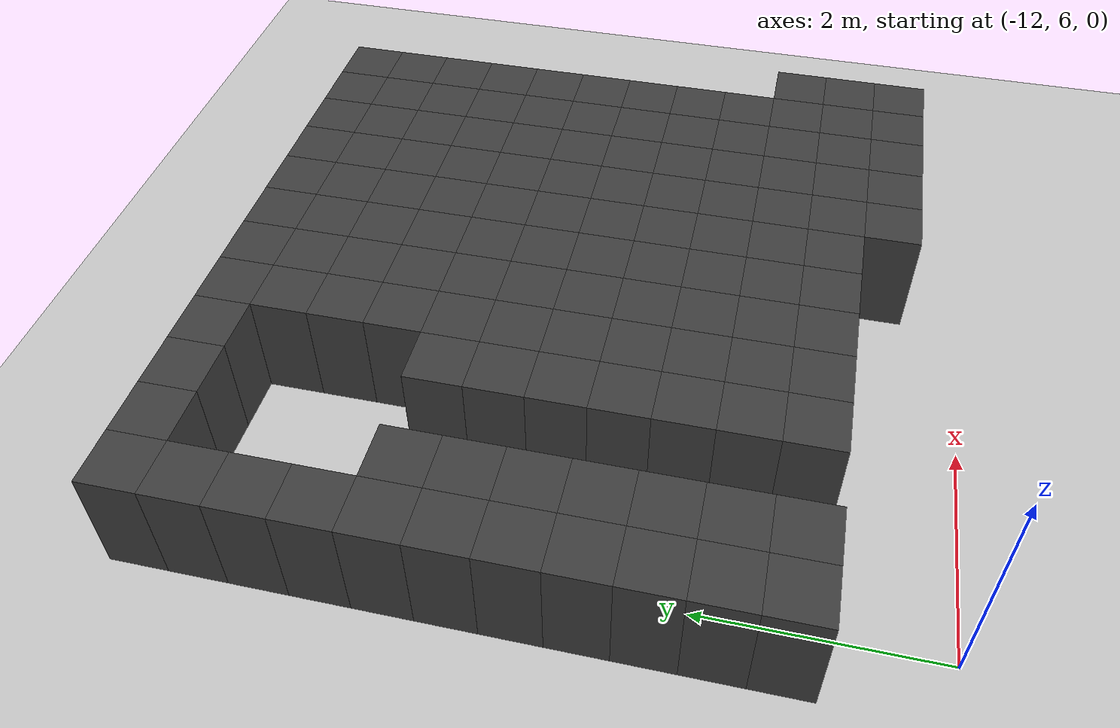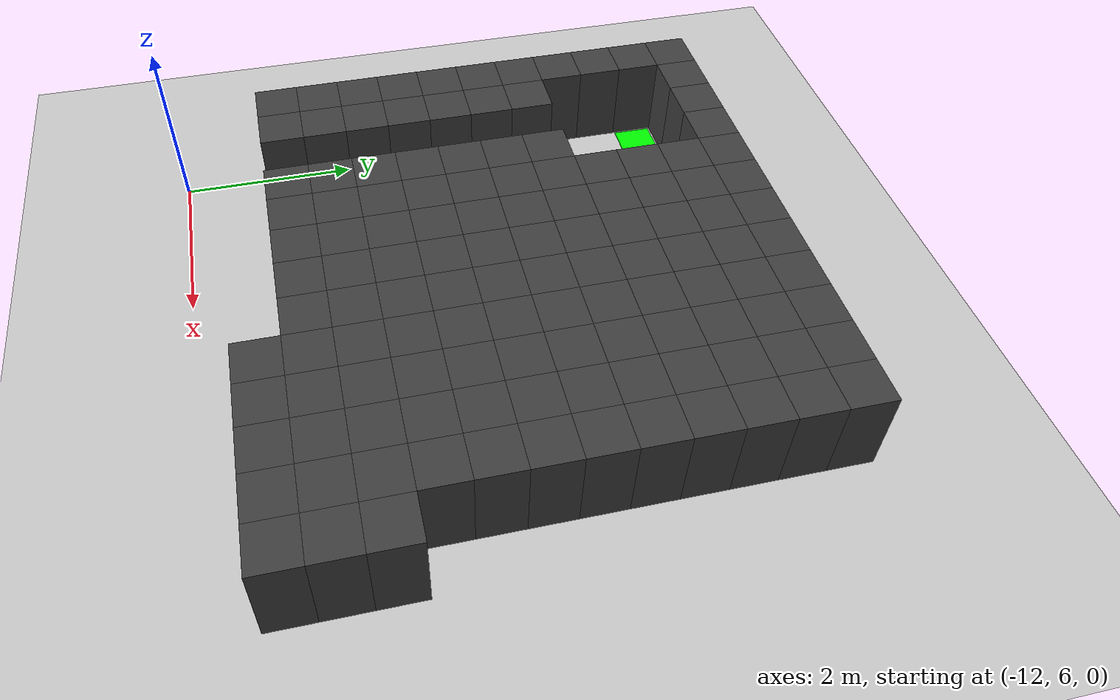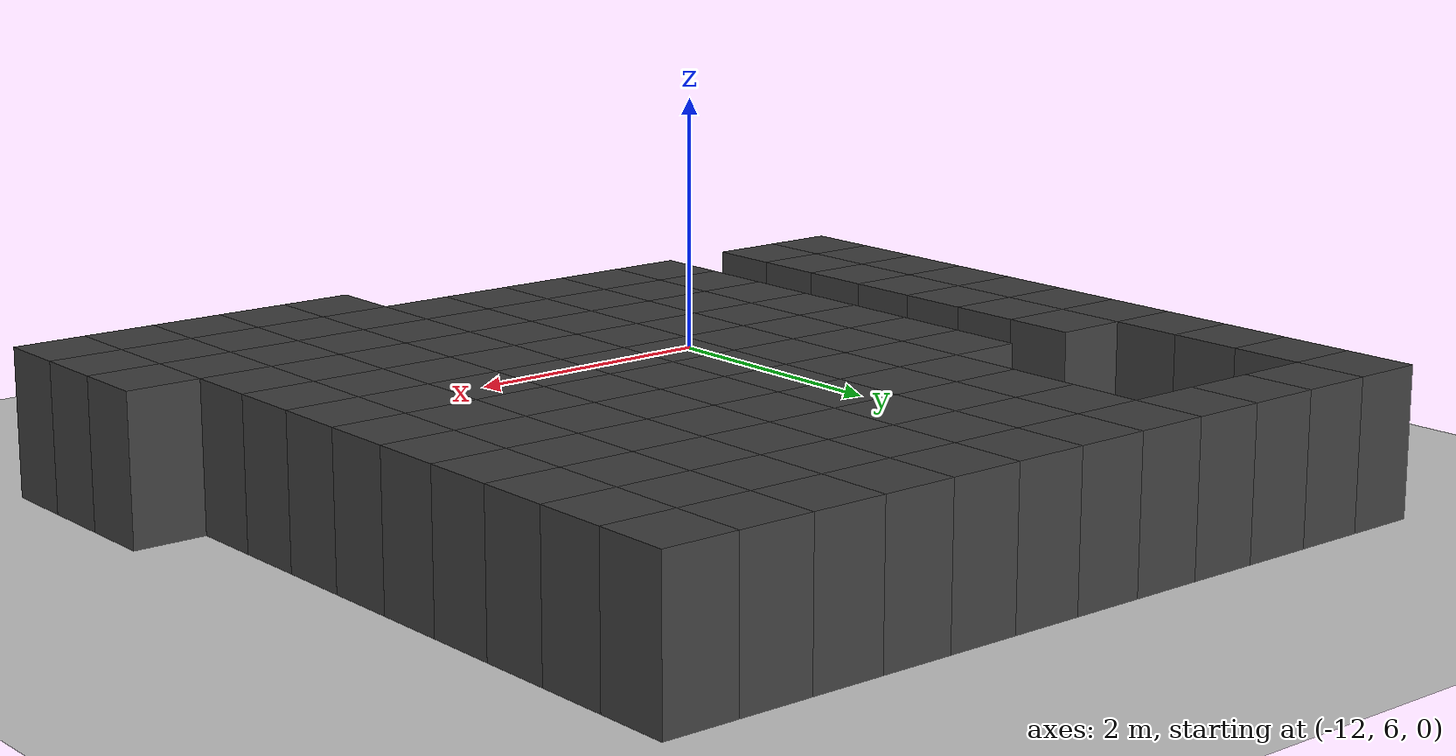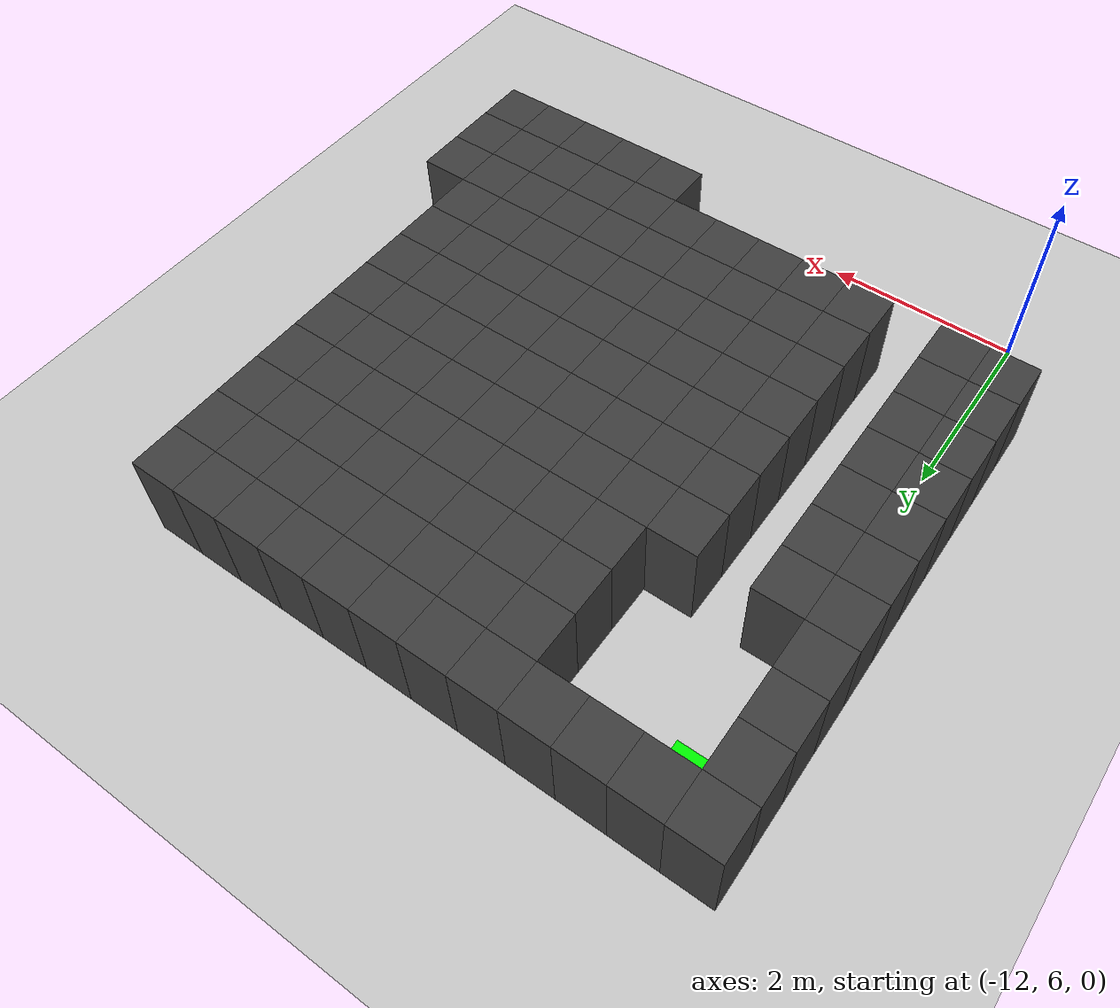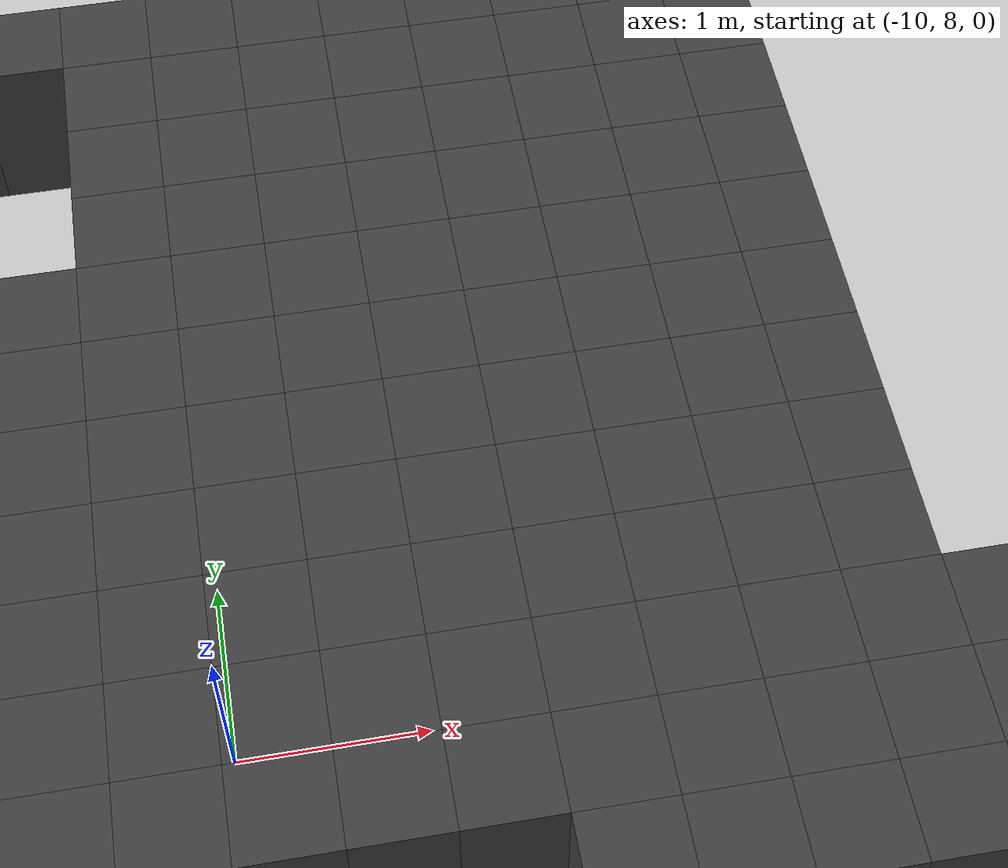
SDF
<sdf version="1.7">
 <world name="map_10726">
  <model name="ground_plane">
   <static>true</static>
   <link name="link">
    <collision name="collision">
     <geometry><plane><normal>0 0 1</normal><size>200 200</size></plane></geometry>
    </collision>
    <visual name="visual">
     <geometry><plane><normal>0 0 1</normal><size>200 200</size></plane></geometry>
     <material><ambient>0.8 0.8 0.8 1</ambient><diffuse>0.8 0.8 0.8 1</diffuse></material>
    </visual>
   </link>
  </model>
  <model name="maze_environment">
   <static>true</static>
   <link name="wall_0">
    <pose>-12.250 12.250 0.500 0 0 0</pose>
    <collision name="col"><geometry><box><size>0.5 0.5 1.0</size></box></geometry></collision>
    <visual name="vis">
     <geometry><box><size>0.5 0.5 1.0</size></box></geometry>
     <material><ambient>0.15 0.15 0.15 1</ambient><diffuse>0.25 0.25 0.25 1</diffuse></material>
    </visual>
   </link>
   <link name="wall_1">
    <pose>-11.750 12.250 0.500 0 0 0</pose>
    <collision name="col"><geometry><box><size>0.5 0.5 1.0</size></box></geometry></collision>
    <visual name="vis">
     <geometry><box><size>0.5 0.5 1.0</size></box></geometry>
     <material><ambient>0.15 0.15 0.15 1</ambient><diffuse>0.25 0.25 0.25 1</diffuse></material>
    </visual>
   </link>
   <link name="wall_2">
    <pose>-11.250 12.250 0.500 0 0 0</pose>
    <collision name="col"><geometry><box><size>0.5 0.5 1.0</size></box></geometry></collision>
    <visual name="vis">
     <geometry><box><size>0.5 0.5 1.0</size></box></geometry>
     <material><ambient>0.15 0.15 0.15 1</ambient><diffuse>0.25 0.25 0.25 1</diffuse></material>
    </visual>
   </link>
   <link name="wall_3">
    <pose>-10.750 12.250 0.500 0 0 0</pose>
    <collision name="col"><geometry><box><size>0.5 0.5 1.0</size></box></geometry></collision>
    <visual name="vis">
     <geometry><box><size>0.5 0.5 1.0</size></box></geometry>
     <material><ambient>0.15 0.15 0.15 1</ambient><diffuse>0.25 0.25 0.25 1</diffuse></material>
    </visual>
   </link>
   <link name="wall_4">
    <pose>-10.250 12.250 0.500 0 0 0</pose>
    <collision name="col"><geometry><box><size>0.5 0.5 1.0</size></box></geometry></collision>
    <visual name="vis">
     <geometry><box><size>0.5 0.5 1.0</size></box></geometry>
     <material><ambient>0.15 0.15 0.15 1</ambient><diffuse>0.25 0.25 0.25 1</diffuse></material>
    </visual>
   </link>
   <link name="wall_5">
    <pose>-9.750 12.250 0.500 0 0 0</pose>
    <collision name="col"><geometry><box><size>0.5 0.5 1.0</size></box></geometry></collision>
    <visual name="vis">
     <geometry><box><size>0.5 0.5 1.0</size></box></geometry>
     <material><ambient>0.15 0.15 0.15 1</ambient><diffuse>0.25 0.25 0.25 1</diffuse></material>
    </visual>
   </link>
   <link name="wall_6">
    <pose>-9.250 12.250 0.500 0 0 0</pose>
    <collision name="col"><geometry><box><size>0.5 0.5 1.0</size></box></geometry></collision>
    <visual name="vis">
     <geometry><box><size>0.5 0.5 1.0</size></box></geometry>
     <material><ambient>0.15 0.15 0.15 1</ambient><diffuse>0.25 0.25 0.25 1</diffuse></material>
    </visual>
   </link>
   <link name="wall_7">
    <pose>-8.750 12.250 0.500 0 0 0</pose>
    <collision name="col"><geometry><box><size>0.5 0.5 1.0</size></box></geometry></collision>
    <visual name="vis">
     <geometry><box><size>0.5 0.5 1.0</size></box></geometry>
     <material><ambient>0.15 0.15 0.15 1</ambient><diffuse>0.25 0.25 0.25 1</diffuse></material>
    </visual>
   </link>
   <link name="wall_8">
    <pose>-8.250 12.250 0.500 0 0 0</pose>
    <collision name="col"><geometry><box><size>0.5 0.5 1.0</size></box></geometry></collision>
    <visual name="vis">
     <geometry><box><size>0.5 0.5 1.0</size></box></geometry>
     <material><ambient>0.15 0.15 0.15 1</ambient><diffuse>0.25 0.25 0.25 1</diffuse></material>
    </visual>
   </link>
   <link name="wall_9">
    <pose>-7.750 12.250 0.500 0 0 0</pose>
    <collision name="col"><geometry><box><size>0.5 0.5 1.0</size></box></geometry></collision>
    <visual name="vis">
     <geometry><box><size>0.5 0.5 1.0</size></box></geometry>
     <material><ambient>0.15 0.15 0.15 1</ambient><diffuse>0.25 0.25 0.25 1</diffuse></material>
    </visual>
   </link>
   <link name="wall_10">
    <pose>-7.250 12.250 0.500 0 0 0</pose>
    <collision name="col"><geometry><box><size>0.5 0.5 1.0</size></box></geometry></collision>
    <visual name="vis">
     <geometry><box><size>0.5 0.5 1.0</size></box></geometry>
     <material><ambient>0.15 0.15 0.15 1</ambient><diffuse>0.25 0.25 0.25 1</diffuse></material>
    </visual>
   </link>
   <link name="wall_11">
    <pose>-6.750 12.250 0.500 0 0 0</pose>
    <collision name="col"><geometry><box><size>0.5 0.5 1.0</size></box></geometry></collision>
    <visual name="vis">
     <geometry><box><size>0.5 0.5 1.0</size></box></geometry>
     <material><ambient>0.15 0.15 0.15 1</ambient><diffuse>0.25 0.25 0.25 1</diffuse></material>
    </visual>
   </link>
   <link name="wall_50">
    <pose>-12.250 11.750 0.500 0 0 0</pose>
    <collision name="col"><geometry><box><size>0.5 0.5 1.0</size></box></geometry></collision>
    <visual name="vis">
     <geometry><box><size>0.5 0.5 1.0</size></box></geometry>
     <material><ambient>0.15 0.15 0.15 1</ambient><diffuse>0.25 0.25 0.25 1</diffuse></material>
    </visual>
   </link>
   <link name="wall_51">
    <pose>-10.250 11.750 0.500 0 0 0</pose>
    <collision name="col"><geometry><box><size>0.5 0.5 1.0</size></box></geometry></collision>
    <visual name="vis">
     <geometry><box><size>0.5 0.5 1.0</size></box></geometry>
     <material><ambient>0.15 0.15 0.15 1</ambient><diffuse>0.25 0.25 0.25 1</diffuse></material>
    </visual>
   </link>
   <link name="wall_52">
    <pose>-9.750 11.750 0.500 0 0 0</pose>
    <collision name="col"><geometry><box><size>0.5 0.5 1.0</size></box></geometry></collision>
    <visual name="vis">
     <geometry><box><size>0.5 0.5 1.0</size></box></geometry>
     <material><ambient>0.15 0.15 0.15 1</ambient><diffuse>0.25 0.25 0.25 1</diffuse></material>
    </visual>
   </link>
   <link name="wall_53">
    <pose>-9.250 11.750 0.500 0 0 0</pose>
    <collision name="col"><geometry><box><size>0.5 0.5 1.0</size></box></geometry></collision>
    <visual name="vis">
     <geometry><box><size>0.5 0.5 1.0</size></box></geometry>
     <material><ambient>0.15 0.15 0.15 1</ambient><diffuse>0.25 0.25 0.25 1</diffuse></material>
    </visual>
   </link>
   <link name="wall_54">
    <pose>-8.750 11.750 0.500 0 0 0</pose>
    <collision name="col"><geometry><box><size>0.5 0.5 1.0</size></box></geometry></collision>
    <visual name="vis">
     <geometry><box><size>0.5 0.5 1.0</size></box></geometry>
     <material><ambient>0.15 0.15 0.15 1</ambient><diffuse>0.25 0.25 0.25 1</diffuse></material>
    </visual>
   </link>
   <link name="wall_55">
    <pose>-8.250 11.750 0.500 0 0 0</pose>
    <collision name="col"><geometry><box><size>0.5 0.5 1.0</size></box></geometry></collision>
    <visual name="vis">
     <geometry><box><size>0.5 0.5 1.0</size></box></geometry>
     <material><ambient>0.15 0.15 0.15 1</ambient><diffuse>0.25 0.25 0.25 1</diffuse></material>
    </visual>
   </link>
   <link name="wall_56">
    <pose>-7.750 11.750 0.500 0 0 0</pose>
    <collision name="col"><geometry><box><size>0.5 0.5 1.0</size></box></geometry></collision>
    <visual name="vis">
     <geometry><box><size>0.5 0.5 1.0</size></box></geometry>
     <material><ambient>0.15 0.15 0.15 1</ambient><diffuse>0.25 0.25 0.25 1</diffuse></material>
    </visual>
   </link>
   <link name="wall_57">
    <pose>-7.250 11.750 0.500 0 0 0</pose>
    <collision name="col"><geometry><box><size>0.5 0.5 1.0</size></box></geometry></collision>
    <visual name="vis">
     <geometry><box><size>0.5 0.5 1.0</size></box></geometry>
     <material><ambient>0.15 0.15 0.15 1</ambient><diffuse>0.25 0.25 0.25 1</diffuse></material>
    </visual>
   </link>
   <link name="wall_58">
    <pose>-6.750 11.750 0.500 0 0 0</pose>
    <collision name="col"><geometry><box><size>0.5 0.5 1.0</size></box></geometry></collision>
    <visual name="vis">
     <geometry><box><size>0.5 0.5 1.0</size></box></geometry>
     <material><ambient>0.15 0.15 0.15 1</ambient><diffuse>0.25 0.25 0.25 1</diffuse></material>
    </visual>
   </link>
   <link name="wall_97">
    <pose>-12.250 11.250 0.500 0 0 0</pose>
    <collision name="col"><geometry><box><size>0.5 0.5 1.0</size></box></geometry></collision>
    <visual name="vis">
     <geometry><box><size>0.5 0.5 1.0</size></box></geometry>
     <material><ambient>0.15 0.15 0.15 1</ambient><diffuse>0.25 0.25 0.25 1</diffuse></material>
    </visual>
   </link>
   <link name="wall_98">
    <pose>-10.250 11.250 0.500 0 0 0</pose>
    <collision name="col"><geometry><box><size>0.5 0.5 1.0</size></box></geometry></collision>
    <visual name="vis">
     <geometry><box><size>0.5 0.5 1.0</size></box></geometry>
     <material><ambient>0.15 0.15 0.15 1</ambient><diffuse>0.25 0.25 0.25 1</diffuse></material>
    </visual>
   </link>
   <link name="wall_99">
    <pose>-9.750 11.250 0.500 0 0 0</pose>
    <collision name="col"><geometry><box><size>0.5 0.5 1.0</size></box></geometry></collision>
    <visual name="vis">
     <geometry><box><size>0.5 0.5 1.0</size></box></geometry>
     <material><ambient>0.15 0.15 0.15 1</ambient><diffuse>0.25 0.25 0.25 1</diffuse></material>
    </visual>
   </link>
   <link name="wall_100">
    <pose>-9.250 11.250 0.500 0 0 0</pose>
    <collision name="col"><geometry><box><size>0.5 0.5 1.0</size></box></geometry></collision>
    <visual name="vis">
     <geometry><box><size>0.5 0.5 1.0</size></box></geometry>
     <material><ambient>0.15 0.15 0.15 1</ambient><diffuse>0.25 0.25 0.25 1</diffuse></material>
    </visual>
   </link>
   <link name="wall_101">
    <pose>-8.750 11.250 0.500 0 0 0</pose>
    <collision name="col"><geometry><box><size>0.5 0.5 1.0</size></box></geometry></collision>
    <visual name="vis">
     <geometry><box><size>0.5 0.5 1.0</size></box></geometry>
     <material><ambient>0.15 0.15 0.15 1</ambient><diffuse>0.25 0.25 0.25 1</diffuse></material>
    </visual>
   </link>
   <link name="wall_102">
    <pose>-8.250 11.250 0.500 0 0 0</pose>
    <collision name="col"><geometry><box><size>0.5 0.5 1.0</size></box></geometry></collision>
    <visual name="vis">
     <geometry><box><size>0.5 0.5 1.0</size></box></geometry>
     <material><ambient>0.15 0.15 0.15 1</ambient><diffuse>0.25 0.25 0.25 1</diffuse></material>
    </visual>
   </link>
   <link name="wall_103">
    <pose>-7.750 11.250 0.500 0 0 0</pose>
    <collision name="col"><geometry><box><size>0.5 0.5 1.0</size></box></geometry></collision>
    <visual name="vis">
     <geometry><box><size>0.5 0.5 1.0</size></box></geometry>
     <material><ambient>0.15 0.15 0.15 1</ambient><diffuse>0.25 0.25 0.25 1</diffuse></material>
    </visual>
   </link>
   <link name="wall_104">
    <pose>-7.250 11.250 0.500 0 0 0</pose>
    <collision name="col"><geometry><box><size>0.5 0.5 1.0</size></box></geometry></collision>
    <visual name="vis">
     <geometry><box><size>0.5 0.5 1.0</size></box></geometry>
     <material><ambient>0.15 0.15 0.15 1</ambient><diffuse>0.25 0.25 0.25 1</diffuse></material>
    </visual>
   </link>
   <link name="wall_105">
    <pose>-6.750 11.250 0.500 0 0 0</pose>
    <collision name="col"><geometry><box><size>0.5 0.5 1.0</size></box></geometry></collision>
    <visual name="vis">
     <geometry><box><size>0.5 0.5 1.0</size></box></geometry>
     <material><ambient>0.15 0.15 0.15 1</ambient><diffuse>0.25 0.25 0.25 1</diffuse></material>
    </visual>
   </link>
   <link name="wall_144">
    <pose>-12.250 10.750 0.500 0 0 0</pose>
    <collision name="col"><geometry><box><size>0.5 0.5 1.0</size></box></geometry></collision>
    <visual name="vis">
     <geometry><box><size>0.5 0.5 1.0</size></box></geometry>
     <material><ambient>0.15 0.15 0.15 1</ambient><diffuse>0.25 0.25 0.25 1</diffuse></material>
    </visual>
   </link>
   <link name="wall_145">
    <pose>-10.250 10.750 0.500 0 0 0</pose>
    <collision name="col"><geometry><box><size>0.5 0.5 1.0</size></box></geometry></collision>
    <visual name="vis">
     <geometry><box><size>0.5 0.5 1.0</size></box></geometry>
     <material><ambient>0.15 0.15 0.15 1</ambient><diffuse>0.25 0.25 0.25 1</diffuse></material>
    </visual>
   </link>
   <link name="wall_146">
    <pose>-9.750 10.750 0.500 0 0 0</pose>
    <collision name="col"><geometry><box><size>0.5 0.5 1.0</size></box></geometry></collision>
    <visual name="vis">
     <geometry><box><size>0.5 0.5 1.0</size></box></geometry>
     <material><ambient>0.15 0.15 0.15 1</ambient><diffuse>0.25 0.25 0.25 1</diffuse></material>
    </visual>
   </link>
   <link name="wall_147">
    <pose>-9.250 10.750 0.500 0 0 0</pose>
    <collision name="col"><geometry><box><size>0.5 0.5 1.0</size></box></geometry></collision>
    <visual name="vis">
     <geometry><box><size>0.5 0.5 1.0</size></box></geometry>
     <material><ambient>0.15 0.15 0.15 1</ambient><diffuse>0.25 0.25 0.25 1</diffuse></material>
    </visual>
   </link>
   <link name="wall_148">
    <pose>-8.750 10.750 0.500 0 0 0</pose>
    <collision name="col"><geometry><box><size>0.5 0.5 1.0</size></box></geometry></collision>
    <visual name="vis">
     <geometry><box><size>0.5 0.5 1.0</size></box></geometry>
     <material><ambient>0.15 0.15 0.15 1</ambient><diffuse>0.25 0.25 0.25 1</diffuse></material>
    </visual>
   </link>
   <link name="wall_149">
    <pose>-8.250 10.750 0.500 0 0 0</pose>
    <collision name="col"><geometry><box><size>0.5 0.5 1.0</size></box></geometry></collision>
    <visual name="vis">
     <geometry><box><size>0.5 0.5 1.0</size></box></geometry>
     <material><ambient>0.15 0.15 0.15 1</ambient><diffuse>0.25 0.25 0.25 1</diffuse></material>
    </visual>
   </link>
   <link name="wall_150">
    <pose>-7.750 10.750 0.500 0 0 0</pose>
    <collision name="col"><geometry><box><size>0.5 0.5 1.0</size></box></geometry></collision>
    <visual name="vis">
     <geometry><box><size>0.5 0.5 1.0</size></box></geometry>
     <material><ambient>0.15 0.15 0.15 1</ambient><diffuse>0.25 0.25 0.25 1</diffuse></material>
    </visual>
   </link>
   <link name="wall_151">
    <pose>-7.250 10.750 0.500 0 0 0</pose>
    <collision name="col"><geometry><box><size>0.5 0.5 1.0</size></box></geometry></collision>
    <visual name="vis">
     <geometry><box><size>0.5 0.5 1.0</size></box></geometry>
     <material><ambient>0.15 0.15 0.15 1</ambient><diffuse>0.25 0.25 0.25 1</diffuse></material>
    </visual>
   </link>
   <link name="wall_152">
    <pose>-6.750 10.750 0.500 0 0 0</pose>
    <collision name="col"><geometry><box><size>0.5 0.5 1.0</size></box></geometry></collision>
    <visual name="vis">
     <geometry><box><size>0.5 0.5 1.0</size></box></geometry>
     <material><ambient>0.15 0.15 0.15 1</ambient><diffuse>0.25 0.25 0.25 1</diffuse></material>
    </visual>
   </link>
   <link name="wall_191">
    <pose>-12.250 10.250 0.500 0 0 0</pose>
    <collision name="col"><geometry><box><size>0.5 0.5 1.0</size></box></geometry></collision>
    <visual name="vis">
     <geometry><box><size>0.5 0.5 1.0</size></box></geometry>
     <material><ambient>0.15 0.15 0.15 1</ambient><diffuse>0.25 0.25 0.25 1</diffuse></material>
    </visual>
   </link>
   <link name="wall_192">
    <pose>-11.750 10.250 0.500 0 0 0</pose>
    <collision name="col"><geometry><box><size>0.5 0.5 1.0</size></box></geometry></collision>
    <visual name="vis">
     <geometry><box><size>0.5 0.5 1.0</size></box></geometry>
     <material><ambient>0.15 0.15 0.15 1</ambient><diffuse>0.25 0.25 0.25 1</diffuse></material>
    </visual>
   </link>
   <link name="wall_193">
    <pose>-10.750 10.250 0.500 0 0 0</pose>
    <collision name="col"><geometry><box><size>0.5 0.5 1.0</size></box></geometry></collision>
    <visual name="vis">
     <geometry><box><size>0.5 0.5 1.0</size></box></geometry>
     <material><ambient>0.15 0.15 0.15 1</ambient><diffuse>0.25 0.25 0.25 1</diffuse></material>
    </visual>
   </link>
   <link name="wall_194">
    <pose>-10.250 10.250 0.500 0 0 0</pose>
    <collision name="col"><geometry><box><size>0.5 0.5 1.0</size></box></geometry></collision>
    <visual name="vis">
     <geometry><box><size>0.5 0.5 1.0</size></box></geometry>
     <material><ambient>0.15 0.15 0.15 1</ambient><diffuse>0.25 0.25 0.25 1</diffuse></material>
    </visual>
   </link>
   <link name="wall_195">
    <pose>-9.750 10.250 0.500 0 0 0</pose>
    <collision name="col"><geometry><box><size>0.5 0.5 1.0</size></box></geometry></collision>
    <visual name="vis">
     <geometry><box><size>0.5 0.5 1.0</size></box></geometry>
     <material><ambient>0.15 0.15 0.15 1</ambient><diffuse>0.25 0.25 0.25 1</diffuse></material>
    </visual>
   </link>
   <link name="wall_196">
    <pose>-9.250 10.250 0.500 0 0 0</pose>
    <collision name="col"><geometry><box><size>0.5 0.5 1.0</size></box></geometry></collision>
    <visual name="vis">
     <geometry><box><size>0.5 0.5 1.0</size></box></geometry>
     <material><ambient>0.15 0.15 0.15 1</ambient><diffuse>0.25 0.25 0.25 1</diffuse></material>
    </visual>
   </link>
   <link name="wall_197">
    <pose>-8.750 10.250 0.500 0 0 0</pose>
    <collision name="col"><geometry><box><size>0.5 0.5 1.0</size></box></geometry></collision>
    <visual name="vis">
     <geometry><box><size>0.5 0.5 1.0</size></box></geometry>
     <material><ambient>0.15 0.15 0.15 1</ambient><diffuse>0.25 0.25 0.25 1</diffuse></material>
    </visual>
   </link>
   <link name="wall_198">
    <pose>-8.250 10.250 0.500 0 0 0</pose>
    <collision name="col"><geometry><box><size>0.5 0.5 1.0</size></box></geometry></collision>
    <visual name="vis">
     <geometry><box><size>0.5 0.5 1.0</size></box></geometry>
     <material><ambient>0.15 0.15 0.15 1</ambient><diffuse>0.25 0.25 0.25 1</diffuse></material>
    </visual>
   </link>
   <link name="wall_199">
    <pose>-7.750 10.250 0.500 0 0 0</pose>
    <collision name="col"><geometry><box><size>0.5 0.5 1.0</size></box></geometry></collision>
    <visual name="vis">
     <geometry><box><size>0.5 0.5 1.0</size></box></geometry>
     <material><ambient>0.15 0.15 0.15 1</ambient><diffuse>0.25 0.25 0.25 1</diffuse></material>
    </visual>
   </link>
   <link name="wall_200">
    <pose>-7.250 10.250 0.500 0 0 0</pose>
    <collision name="col"><geometry><box><size>0.5 0.5 1.0</size></box></geometry></collision>
    <visual name="vis">
     <geometry><box><size>0.5 0.5 1.0</size></box></geometry>
     <material><ambient>0.15 0.15 0.15 1</ambient><diffuse>0.25 0.25 0.25 1</diffuse></material>
    </visual>
   </link>
   <link name="wall_201">
    <pose>-6.750 10.250 0.500 0 0 0</pose>
    <collision name="col"><geometry><box><size>0.5 0.5 1.0</size></box></geometry></collision>
    <visual name="vis">
     <geometry><box><size>0.5 0.5 1.0</size></box></geometry>
     <material><ambient>0.15 0.15 0.15 1</ambient><diffuse>0.25 0.25 0.25 1</diffuse></material>
    </visual>
   </link>
   <link name="wall_240">
    <pose>-12.250 9.750 0.500 0 0 0</pose>
    <collision name="col"><geometry><box><size>0.5 0.5 1.0</size></box></geometry></collision>
    <visual name="vis">
     <geometry><box><size>0.5 0.5 1.0</size></box></geometry>
     <material><ambient>0.15 0.15 0.15 1</ambient><diffuse>0.25 0.25 0.25 1</diffuse></material>
    </visual>
   </link>
   <link name="wall_241">
    <pose>-11.750 9.750 0.500 0 0 0</pose>
    <collision name="col"><geometry><box><size>0.5 0.5 1.0</size></box></geometry></collision>
    <visual name="vis">
     <geometry><box><size>0.5 0.5 1.0</size></box></geometry>
     <material><ambient>0.15 0.15 0.15 1</ambient><diffuse>0.25 0.25 0.25 1</diffuse></material>
    </visual>
   </link>
   <link name="wall_242">
    <pose>-10.750 9.750 0.500 0 0 0</pose>
    <collision name="col"><geometry><box><size>0.5 0.5 1.0</size></box></geometry></collision>
    <visual name="vis">
     <geometry><box><size>0.5 0.5 1.0</size></box></geometry>
     <material><ambient>0.15 0.15 0.15 1</ambient><diffuse>0.25 0.25 0.25 1</diffuse></material>
    </visual>
   </link>
   <link name="wall_243">
    <pose>-10.250 9.750 0.500 0 0 0</pose>
    <collision name="col"><geometry><box><size>0.5 0.5 1.0</size></box></geometry></collision>
    <visual name="vis">
     <geometry><box><size>0.5 0.5 1.0</size></box></geometry>
     <material><ambient>0.15 0.15 0.15 1</ambient><diffuse>0.25 0.25 0.25 1</diffuse></material>
    </visual>
   </link>
   <link name="wall_244">
    <pose>-9.750 9.750 0.500 0 0 0</pose>
    <collision name="col"><geometry><box><size>0.5 0.5 1.0</size></box></geometry></collision>
    <visual name="vis">
     <geometry><box><size>0.5 0.5 1.0</size></box></geometry>
     <material><ambient>0.15 0.15 0.15 1</ambient><diffuse>0.25 0.25 0.25 1</diffuse></material>
    </visual>
   </link>
   <link name="wall_245">
    <pose>-9.250 9.750 0.500 0 0 0</pose>
    <collision name="col"><geometry><box><size>0.5 0.5 1.0</size></box></geometry></collision>
    <visual name="vis">
     <geometry><box><size>0.5 0.5 1.0</size></box></geometry>
     <material><ambient>0.15 0.15 0.15 1</ambient><diffuse>0.25 0.25 0.25 1</diffuse></material>
    </visual>
   </link>
   <link name="wall_246">
    <pose>-8.750 9.750 0.500 0 0 0</pose>
    <collision name="col"><geometry><box><size>0.5 0.5 1.0</size></box></geometry></collision>
    <visual name="vis">
     <geometry><box><size>0.5 0.5 1.0</size></box></geometry>
     <material><ambient>0.15 0.15 0.15 1</ambient><diffuse>0.25 0.25 0.25 1</diffuse></material>
    </visual>
   </link>
   <link name="wall_247">
    <pose>-8.250 9.750 0.500 0 0 0</pose>
    <collision name="col"><geometry><box><size>0.5 0.5 1.0</size></box></geometry></collision>
    <visual name="vis">
     <geometry><box><size>0.5 0.5 1.0</size></box></geometry>
     <material><ambient>0.15 0.15 0.15 1</ambient><diffuse>0.25 0.25 0.25 1</diffuse></material>
    </visual>
   </link>
   <link name="wall_248">
    <pose>-7.750 9.750 0.500 0 0 0</pose>
    <collision name="col"><geometry><box><size>0.5 0.5 1.0</size></box></geometry></collision>
    <visual name="vis">
     <geometry><box><size>0.5 0.5 1.0</size></box></geometry>
     <material><ambient>0.15 0.15 0.15 1</ambient><diffuse>0.25 0.25 0.25 1</diffuse></material>
    </visual>
   </link>
   <link name="wall_249">
    <pose>-7.250 9.750 0.500 0 0 0</pose>
    <collision name="col"><geometry><box><size>0.5 0.5 1.0</size></box></geometry></collision>
    <visual name="vis">
     <geometry><box><size>0.5 0.5 1.0</size></box></geometry>
     <material><ambient>0.15 0.15 0.15 1</ambient><diffuse>0.25 0.25 0.25 1</diffuse></material>
    </visual>
   </link>
   <link name="wall_250">
    <pose>-6.750 9.750 0.500 0 0 0</pose>
    <collision name="col"><geometry><box><size>0.5 0.5 1.0</size></box></geometry></collision>
    <visual name="vis">
     <geometry><box><size>0.5 0.5 1.0</size></box></geometry>
     <material><ambient>0.15 0.15 0.15 1</ambient><diffuse>0.25 0.25 0.25 1</diffuse></material>
    </visual>
   </link>
   <link name="wall_289">
    <pose>-12.250 9.250 0.500 0 0 0</pose>
    <collision name="col"><geometry><box><size>0.5 0.5 1.0</size></box></geometry></collision>
    <visual name="vis">
     <geometry><box><size>0.5 0.5 1.0</size></box></geometry>
     <material><ambient>0.15 0.15 0.15 1</ambient><diffuse>0.25 0.25 0.25 1</diffuse></material>
    </visual>
   </link>
   <link name="wall_290">
    <pose>-11.750 9.250 0.500 0 0 0</pose>
    <collision name="col"><geometry><box><size>0.5 0.5 1.0</size></box></geometry></collision>
    <visual name="vis">
     <geometry><box><size>0.5 0.5 1.0</size></box></geometry>
     <material><ambient>0.15 0.15 0.15 1</ambient><diffuse>0.25 0.25 0.25 1</diffuse></material>
    </visual>
   </link>
   <link name="wall_291">
    <pose>-10.750 9.250 0.500 0 0 0</pose>
    <collision name="col"><geometry><box><size>0.5 0.5 1.0</size></box></geometry></collision>
    <visual name="vis">
     <geometry><box><size>0.5 0.5 1.0</size></box></geometry>
     <material><ambient>0.15 0.15 0.15 1</ambient><diffuse>0.25 0.25 0.25 1</diffuse></material>
    </visual>
   </link>
   <link name="wall_292">
    <pose>-10.250 9.250 0.500 0 0 0</pose>
    <collision name="col"><geometry><box><size>0.5 0.5 1.0</size></box></geometry></collision>
    <visual name="vis">
     <geometry><box><size>0.5 0.5 1.0</size></box></geometry>
     <material><ambient>0.15 0.15 0.15 1</ambient><diffuse>0.25 0.25 0.25 1</diffuse></material>
    </visual>
   </link>
   <link name="wall_293">
    <pose>-9.750 9.250 0.500 0 0 0</pose>
    <collision name="col"><geometry><box><size>0.5 0.5 1.0</size></box></geometry></collision>
    <visual name="vis">
     <geometry><box><size>0.5 0.5 1.0</size></box></geometry>
     <material><ambient>0.15 0.15 0.15 1</ambient><diffuse>0.25 0.25 0.25 1</diffuse></material>
    </visual>
   </link>
   <link name="wall_294">
    <pose>-9.250 9.250 0.500 0 0 0</pose>
    <collision name="col"><geometry><box><size>0.5 0.5 1.0</size></box></geometry></collision>
    <visual name="vis">
     <geometry><box><size>0.5 0.5 1.0</size></box></geometry>
     <material><ambient>0.15 0.15 0.15 1</ambient><diffuse>0.25 0.25 0.25 1</diffuse></material>
    </visual>
   </link>
   <link name="wall_295">
    <pose>-8.750 9.250 0.500 0 0 0</pose>
    <collision name="col"><geometry><box><size>0.5 0.5 1.0</size></box></geometry></collision>
    <visual name="vis">
     <geometry><box><size>0.5 0.5 1.0</size></box></geometry>
     <material><ambient>0.15 0.15 0.15 1</ambient><diffuse>0.25 0.25 0.25 1</diffuse></material>
    </visual>
   </link>
   <link name="wall_296">
    <pose>-8.250 9.250 0.500 0 0 0</pose>
    <collision name="col"><geometry><box><size>0.5 0.5 1.0</size></box></geometry></collision>
    <visual name="vis">
     <geometry><box><size>0.5 0.5 1.0</size></box></geometry>
     <material><ambient>0.15 0.15 0.15 1</ambient><diffuse>0.25 0.25 0.25 1</diffuse></material>
    </visual>
   </link>
   <link name="wall_297">
    <pose>-7.750 9.250 0.500 0 0 0</pose>
    <collision name="col"><geometry><box><size>0.5 0.5 1.0</size></box></geometry></collision>
    <visual name="vis">
     <geometry><box><size>0.5 0.5 1.0</size></box></geometry>
     <material><ambient>0.15 0.15 0.15 1</ambient><diffuse>0.25 0.25 0.25 1</diffuse></material>
    </visual>
   </link>
   <link name="wall_298">
    <pose>-7.250 9.250 0.500 0 0 0</pose>
    <collision name="col"><geometry><box><size>0.5 0.5 1.0</size></box></geometry></collision>
    <visual name="vis">
     <geometry><box><size>0.5 0.5 1.0</size></box></geometry>
     <material><ambient>0.15 0.15 0.15 1</ambient><diffuse>0.25 0.25 0.25 1</diffuse></material>
    </visual>
   </link>
   <link name="wall_299">
    <pose>-6.750 9.250 0.500 0 0 0</pose>
    <collision name="col"><geometry><box><size>0.5 0.5 1.0</size></box></geometry></collision>
    <visual name="vis">
     <geometry><box><size>0.5 0.5 1.0</size></box></geometry>
     <material><ambient>0.15 0.15 0.15 1</ambient><diffuse>0.25 0.25 0.25 1</diffuse></material>
    </visual>
   </link>
   <link name="wall_338">
    <pose>-12.250 8.750 0.500 0 0 0</pose>
    <collision name="col"><geometry><box><size>0.5 0.5 1.0</size></box></geometry></collision>
    <visual name="vis">
     <geometry><box><size>0.5 0.5 1.0</size></box></geometry>
     <material><ambient>0.15 0.15 0.15 1</ambient><diffuse>0.25 0.25 0.25 1</diffuse></material>
    </visual>
   </link>
   <link name="wall_339">
    <pose>-11.750 8.750 0.500 0 0 0</pose>
    <collision name="col"><geometry><box><size>0.5 0.5 1.0</size></box></geometry></collision>
    <visual name="vis">
     <geometry><box><size>0.5 0.5 1.0</size></box></geometry>
     <material><ambient>0.15 0.15 0.15 1</ambient><diffuse>0.25 0.25 0.25 1</diffuse></material>
    </visual>
   </link>
   <link name="wall_340">
    <pose>-10.750 8.750 0.500 0 0 0</pose>
    <collision name="col"><geometry><box><size>0.5 0.5 1.0</size></box></geometry></collision>
    <visual name="vis">
     <geometry><box><size>0.5 0.5 1.0</size></box></geometry>
     <material><ambient>0.15 0.15 0.15 1</ambient><diffuse>0.25 0.25 0.25 1</diffuse></material>
    </visual>
   </link>
   <link name="wall_341">
    <pose>-10.250 8.750 0.500 0 0 0</pose>
    <collision name="col"><geometry><box><size>0.5 0.5 1.0</size></box></geometry></collision>
    <visual name="vis">
     <geometry><box><size>0.5 0.5 1.0</size></box></geometry>
     <material><ambient>0.15 0.15 0.15 1</ambient><diffuse>0.25 0.25 0.25 1</diffuse></material>
    </visual>
   </link>
   <link name="wall_342">
    <pose>-9.750 8.750 0.500 0 0 0</pose>
    <collision name="col"><geometry><box><size>0.5 0.5 1.0</size></box></geometry></collision>
    <visual name="vis">
     <geometry><box><size>0.5 0.5 1.0</size></box></geometry>
     <material><ambient>0.15 0.15 0.15 1</ambient><diffuse>0.25 0.25 0.25 1</diffuse></material>
    </visual>
   </link>
   <link name="wall_343">
    <pose>-9.250 8.750 0.500 0 0 0</pose>
    <collision name="col"><geometry><box><size>0.5 0.5 1.0</size></box></geometry></collision>
    <visual name="vis">
     <geometry><box><size>0.5 0.5 1.0</size></box></geometry>
     <material><ambient>0.15 0.15 0.15 1</ambient><diffuse>0.25 0.25 0.25 1</diffuse></material>
    </visual>
   </link>
   <link name="wall_344">
    <pose>-8.750 8.750 0.500 0 0 0</pose>
    <collision name="col"><geometry><box><size>0.5 0.5 1.0</size></box></geometry></collision>
    <visual name="vis">
     <geometry><box><size>0.5 0.5 1.0</size></box></geometry>
     <material><ambient>0.15 0.15 0.15 1</ambient><diffuse>0.25 0.25 0.25 1</diffuse></material>
    </visual>
   </link>
   <link name="wall_345">
    <pose>-8.250 8.750 0.500 0 0 0</pose>
    <collision name="col"><geometry><box><size>0.5 0.5 1.0</size></box></geometry></collision>
    <visual name="vis">
     <geometry><box><size>0.5 0.5 1.0</size></box></geometry>
     <material><ambient>0.15 0.15 0.15 1</ambient><diffuse>0.25 0.25 0.25 1</diffuse></material>
    </visual>
   </link>
   <link name="wall_346">
    <pose>-7.750 8.750 0.500 0 0 0</pose>
    <collision name="col"><geometry><box><size>0.5 0.5 1.0</size></box></geometry></collision>
    <visual name="vis">
     <geometry><box><size>0.5 0.5 1.0</size></box></geometry>
     <material><ambient>0.15 0.15 0.15 1</ambient><diffuse>0.25 0.25 0.25 1</diffuse></material>
    </visual>
   </link>
   <link name="wall_347">
    <pose>-7.250 8.750 0.500 0 0 0</pose>
    <collision name="col"><geometry><box><size>0.5 0.5 1.0</size></box></geometry></collision>
    <visual name="vis">
     <geometry><box><size>0.5 0.5 1.0</size></box></geometry>
     <material><ambient>0.15 0.15 0.15 1</ambient><diffuse>0.25 0.25 0.25 1</diffuse></material>
    </visual>
   </link>
   <link name="wall_348">
    <pose>-6.750 8.750 0.500 0 0 0</pose>
    <collision name="col"><geometry><box><size>0.5 0.5 1.0</size></box></geometry></collision>
    <visual name="vis">
     <geometry><box><size>0.5 0.5 1.0</size></box></geometry>
     <material><ambient>0.15 0.15 0.15 1</ambient><diffuse>0.25 0.25 0.25 1</diffuse></material>
    </visual>
   </link>
   <link name="wall_379">
    <pose>-12.250 8.250 0.500 0 0 0</pose>
    <collision name="col"><geometry><box><size>0.5 0.5 1.0</size></box></geometry></collision>
    <visual name="vis">
     <geometry><box><size>0.5 0.5 1.0</size></box></geometry>
     <material><ambient>0.15 0.15 0.15 1</ambient><diffuse>0.25 0.25 0.25 1</diffuse></material>
    </visual>
   </link>
   <link name="wall_380">
    <pose>-11.750 8.250 0.500 0 0 0</pose>
    <collision name="col"><geometry><box><size>0.5 0.5 1.0</size></box></geometry></collision>
    <visual name="vis">
     <geometry><box><size>0.5 0.5 1.0</size></box></geometry>
     <material><ambient>0.15 0.15 0.15 1</ambient><diffuse>0.25 0.25 0.25 1</diffuse></material>
    </visual>
   </link>
   <link name="wall_381">
    <pose>-10.750 8.250 0.500 0 0 0</pose>
    <collision name="col"><geometry><box><size>0.5 0.5 1.0</size></box></geometry></collision>
    <visual name="vis">
     <geometry><box><size>0.5 0.5 1.0</size></box></geometry>
     <material><ambient>0.15 0.15 0.15 1</ambient><diffuse>0.25 0.25 0.25 1</diffuse></material>
    </visual>
   </link>
   <link name="wall_382">
    <pose>-10.250 8.250 0.500 0 0 0</pose>
    <collision name="col"><geometry><box><size>0.5 0.5 1.0</size></box></geometry></collision>
    <visual name="vis">
     <geometry><box><size>0.5 0.5 1.0</size></box></geometry>
     <material><ambient>0.15 0.15 0.15 1</ambient><diffuse>0.25 0.25 0.25 1</diffuse></material>
    </visual>
   </link>
   <link name="wall_383">
    <pose>-9.750 8.250 0.500 0 0 0</pose>
    <collision name="col"><geometry><box><size>0.5 0.5 1.0</size></box></geometry></collision>
    <visual name="vis">
     <geometry><box><size>0.5 0.5 1.0</size></box></geometry>
     <material><ambient>0.15 0.15 0.15 1</ambient><diffuse>0.25 0.25 0.25 1</diffuse></material>
    </visual>
   </link>
   <link name="wall_384">
    <pose>-9.250 8.250 0.500 0 0 0</pose>
    <collision name="col"><geometry><box><size>0.5 0.5 1.0</size></box></geometry></collision>
    <visual name="vis">
     <geometry><box><size>0.5 0.5 1.0</size></box></geometry>
     <material><ambient>0.15 0.15 0.15 1</ambient><diffuse>0.25 0.25 0.25 1</diffuse></material>
    </visual>
   </link>
   <link name="wall_385">
    <pose>-8.750 8.250 0.500 0 0 0</pose>
    <collision name="col"><geometry><box><size>0.5 0.5 1.0</size></box></geometry></collision>
    <visual name="vis">
     <geometry><box><size>0.5 0.5 1.0</size></box></geometry>
     <material><ambient>0.15 0.15 0.15 1</ambient><diffuse>0.25 0.25 0.25 1</diffuse></material>
    </visual>
   </link>
   <link name="wall_386">
    <pose>-8.250 8.250 0.500 0 0 0</pose>
    <collision name="col"><geometry><box><size>0.5 0.5 1.0</size></box></geometry></collision>
    <visual name="vis">
     <geometry><box><size>0.5 0.5 1.0</size></box></geometry>
     <material><ambient>0.15 0.15 0.15 1</ambient><diffuse>0.25 0.25 0.25 1</diffuse></material>
    </visual>
   </link>
   <link name="wall_387">
    <pose>-7.750 8.250 0.500 0 0 0</pose>
    <collision name="col"><geometry><box><size>0.5 0.5 1.0</size></box></geometry></collision>
    <visual name="vis">
     <geometry><box><size>0.5 0.5 1.0</size></box></geometry>
     <material><ambient>0.15 0.15 0.15 1</ambient><diffuse>0.25 0.25 0.25 1</diffuse></material>
    </visual>
   </link>
   <link name="wall_388">
    <pose>-7.250 8.250 0.500 0 0 0</pose>
    <collision name="col"><geometry><box><size>0.5 0.5 1.0</size></box></geometry></collision>
    <visual name="vis">
     <geometry><box><size>0.5 0.5 1.0</size></box></geometry>
     <material><ambient>0.15 0.15 0.15 1</ambient><diffuse>0.25 0.25 0.25 1</diffuse></material>
    </visual>
   </link>
   <link name="wall_389">
    <pose>-6.750 8.250 0.500 0 0 0</pose>
    <collision name="col"><geometry><box><size>0.5 0.5 1.0</size></box></geometry></collision>
    <visual name="vis">
     <geometry><box><size>0.5 0.5 1.0</size></box></geometry>
     <material><ambient>0.15 0.15 0.15 1</ambient><diffuse>0.25 0.25 0.25 1</diffuse></material>
    </visual>
   </link>
   <link name="wall_420">
    <pose>-12.250 7.750 0.500 0 0 0</pose>
    <collision name="col"><geometry><box><size>0.5 0.5 1.0</size></box></geometry></collision>
    <visual name="vis">
     <geometry><box><size>0.5 0.5 1.0</size></box></geometry>
     <material><ambient>0.15 0.15 0.15 1</ambient><diffuse>0.25 0.25 0.25 1</diffuse></material>
    </visual>
   </link>
   <link name="wall_421">
    <pose>-11.750 7.750 0.500 0 0 0</pose>
    <collision name="col"><geometry><box><size>0.5 0.5 1.0</size></box></geometry></collision>
    <visual name="vis">
     <geometry><box><size>0.5 0.5 1.0</size></box></geometry>
     <material><ambient>0.15 0.15 0.15 1</ambient><diffuse>0.25 0.25 0.25 1</diffuse></material>
    </visual>
   </link>
   <link name="wall_422">
    <pose>-10.750 7.750 0.500 0 0 0</pose>
    <collision name="col"><geometry><box><size>0.5 0.5 1.0</size></box></geometry></collision>
    <visual name="vis">
     <geometry><box><size>0.5 0.5 1.0</size></box></geometry>
     <material><ambient>0.15 0.15 0.15 1</ambient><diffuse>0.25 0.25 0.25 1</diffuse></material>
    </visual>
   </link>
   <link name="wall_423">
    <pose>-10.250 7.750 0.500 0 0 0</pose>
    <collision name="col"><geometry><box><size>0.5 0.5 1.0</size></box></geometry></collision>
    <visual name="vis">
     <geometry><box><size>0.5 0.5 1.0</size></box></geometry>
     <material><ambient>0.15 0.15 0.15 1</ambient><diffuse>0.25 0.25 0.25 1</diffuse></material>
    </visual>
   </link>
   <link name="wall_424">
    <pose>-9.750 7.750 0.500 0 0 0</pose>
    <collision name="col"><geometry><box><size>0.5 0.5 1.0</size></box></geometry></collision>
    <visual name="vis">
     <geometry><box><size>0.5 0.5 1.0</size></box></geometry>
     <material><ambient>0.15 0.15 0.15 1</ambient><diffuse>0.25 0.25 0.25 1</diffuse></material>
    </visual>
   </link>
   <link name="wall_425">
    <pose>-9.250 7.750 0.500 0 0 0</pose>
    <collision name="col"><geometry><box><size>0.5 0.5 1.0</size></box></geometry></collision>
    <visual name="vis">
     <geometry><box><size>0.5 0.5 1.0</size></box></geometry>
     <material><ambient>0.15 0.15 0.15 1</ambient><diffuse>0.25 0.25 0.25 1</diffuse></material>
    </visual>
   </link>
   <link name="wall_426">
    <pose>-8.750 7.750 0.500 0 0 0</pose>
    <collision name="col"><geometry><box><size>0.5 0.5 1.0</size></box></geometry></collision>
    <visual name="vis">
     <geometry><box><size>0.5 0.5 1.0</size></box></geometry>
     <material><ambient>0.15 0.15 0.15 1</ambient><diffuse>0.25 0.25 0.25 1</diffuse></material>
    </visual>
   </link>
   <link name="wall_427">
    <pose>-8.250 7.750 0.500 0 0 0</pose>
    <collision name="col"><geometry><box><size>0.5 0.5 1.0</size></box></geometry></collision>
    <visual name="vis">
     <geometry><box><size>0.5 0.5 1.0</size></box></geometry>
     <material><ambient>0.15 0.15 0.15 1</ambient><diffuse>0.25 0.25 0.25 1</diffuse></material>
    </visual>
   </link>
   <link name="wall_428">
    <pose>-7.750 7.750 0.500 0 0 0</pose>
    <collision name="col"><geometry><box><size>0.5 0.5 1.0</size></box></geometry></collision>
    <visual name="vis">
     <geometry><box><size>0.5 0.5 1.0</size></box></geometry>
     <material><ambient>0.15 0.15 0.15 1</ambient><diffuse>0.25 0.25 0.25 1</diffuse></material>
    </visual>
   </link>
   <link name="wall_429">
    <pose>-7.250 7.750 0.500 0 0 0</pose>
    <collision name="col"><geometry><box><size>0.5 0.5 1.0</size></box></geometry></collision>
    <visual name="vis">
     <geometry><box><size>0.5 0.5 1.0</size></box></geometry>
     <material><ambient>0.15 0.15 0.15 1</ambient><diffuse>0.25 0.25 0.25 1</diffuse></material>
    </visual>
   </link>
   <link name="wall_430">
    <pose>-6.750 7.750 0.500 0 0 0</pose>
    <collision name="col"><geometry><box><size>0.5 0.5 1.0</size></box></geometry></collision>
    <visual name="vis">
     <geometry><box><size>0.5 0.5 1.0</size></box></geometry>
     <material><ambient>0.15 0.15 0.15 1</ambient><diffuse>0.25 0.25 0.25 1</diffuse></material>
    </visual>
   </link>
   <link name="wall_431">
    <pose>-6.250 7.750 0.500 0 0 0</pose>
    <collision name="col"><geometry><box><size>0.5 0.5 1.0</size></box></geometry></collision>
    <visual name="vis">
     <geometry><box><size>0.5 0.5 1.0</size></box></geometry>
     <material><ambient>0.15 0.15 0.15 1</ambient><diffuse>0.25 0.25 0.25 1</diffuse></material>
    </visual>
   </link>
   <link name="wall_461">
    <pose>-12.250 7.250 0.500 0 0 0</pose>
    <collision name="col"><geometry><box><size>0.5 0.5 1.0</size></box></geometry></collision>
    <visual name="vis">
     <geometry><box><size>0.5 0.5 1.0</size></box></geometry>
     <material><ambient>0.15 0.15 0.15 1</ambient><diffuse>0.25 0.25 0.25 1</diffuse></material>
    </visual>
   </link>
   <link name="wall_462">
    <pose>-11.750 7.250 0.500 0 0 0</pose>
    <collision name="col"><geometry><box><size>0.5 0.5 1.0</size></box></geometry></collision>
    <visual name="vis">
     <geometry><box><size>0.5 0.5 1.0</size></box></geometry>
     <material><ambient>0.15 0.15 0.15 1</ambient><diffuse>0.25 0.25 0.25 1</diffuse></material>
    </visual>
   </link>
   <link name="wall_463">
    <pose>-10.750 7.250 0.500 0 0 0</pose>
    <collision name="col"><geometry><box><size>0.5 0.5 1.0</size></box></geometry></collision>
    <visual name="vis">
     <geometry><box><size>0.5 0.5 1.0</size></box></geometry>
     <material><ambient>0.15 0.15 0.15 1</ambient><diffuse>0.25 0.25 0.25 1</diffuse></material>
    </visual>
   </link>
   <link name="wall_464">
    <pose>-10.250 7.250 0.500 0 0 0</pose>
    <collision name="col"><geometry><box><size>0.5 0.5 1.0</size></box></geometry></collision>
    <visual name="vis">
     <geometry><box><size>0.5 0.5 1.0</size></box></geometry>
     <material><ambient>0.15 0.15 0.15 1</ambient><diffuse>0.25 0.25 0.25 1</diffuse></material>
    </visual>
   </link>
   <link name="wall_465">
    <pose>-9.750 7.250 0.500 0 0 0</pose>
    <collision name="col"><geometry><box><size>0.5 0.5 1.0</size></box></geometry></collision>
    <visual name="vis">
     <geometry><box><size>0.5 0.5 1.0</size></box></geometry>
     <material><ambient>0.15 0.15 0.15 1</ambient><diffuse>0.25 0.25 0.25 1</diffuse></material>
    </visual>
   </link>
   <link name="wall_466">
    <pose>-9.250 7.250 0.500 0 0 0</pose>
    <collision name="col"><geometry><box><size>0.5 0.5 1.0</size></box></geometry></collision>
    <visual name="vis">
     <geometry><box><size>0.5 0.5 1.0</size></box></geometry>
     <material><ambient>0.15 0.15 0.15 1</ambient><diffuse>0.25 0.25 0.25 1</diffuse></material>
    </visual>
   </link>
   <link name="wall_467">
    <pose>-8.750 7.250 0.500 0 0 0</pose>
    <collision name="col"><geometry><box><size>0.5 0.5 1.0</size></box></geometry></collision>
    <visual name="vis">
     <geometry><box><size>0.5 0.5 1.0</size></box></geometry>
     <material><ambient>0.15 0.15 0.15 1</ambient><diffuse>0.25 0.25 0.25 1</diffuse></material>
    </visual>
   </link>
   <link name="wall_468">
    <pose>-8.250 7.250 0.500 0 0 0</pose>
    <collision name="col"><geometry><box><size>0.5 0.5 1.0</size></box></geometry></collision>
    <visual name="vis">
     <geometry><box><size>0.5 0.5 1.0</size></box></geometry>
     <material><ambient>0.15 0.15 0.15 1</ambient><diffuse>0.25 0.25 0.25 1</diffuse></material>
    </visual>
   </link>
   <link name="wall_469">
    <pose>-7.750 7.250 0.500 0 0 0</pose>
    <collision name="col"><geometry><box><size>0.5 0.5 1.0</size></box></geometry></collision>
    <visual name="vis">
     <geometry><box><size>0.5 0.5 1.0</size></box></geometry>
     <material><ambient>0.15 0.15 0.15 1</ambient><diffuse>0.25 0.25 0.25 1</diffuse></material>
    </visual>
   </link>
   <link name="wall_470">
    <pose>-7.250 7.250 0.500 0 0 0</pose>
    <collision name="col"><geometry><box><size>0.5 0.5 1.0</size></box></geometry></collision>
    <visual name="vis">
     <geometry><box><size>0.5 0.5 1.0</size></box></geometry>
     <material><ambient>0.15 0.15 0.15 1</ambient><diffuse>0.25 0.25 0.25 1</diffuse></material>
    </visual>
   </link>
   <link name="wall_471">
    <pose>-6.750 7.250 0.500 0 0 0</pose>
    <collision name="col"><geometry><box><size>0.5 0.5 1.0</size></box></geometry></collision>
    <visual name="vis">
     <geometry><box><size>0.5 0.5 1.0</size></box></geometry>
     <material><ambient>0.15 0.15 0.15 1</ambient><diffuse>0.25 0.25 0.25 1</diffuse></material>
    </visual>
   </link>
   <link name="wall_472">
    <pose>-6.250 7.250 0.500 0 0 0</pose>
    <collision name="col"><geometry><box><size>0.5 0.5 1.0</size></box></geometry></collision>
    <visual name="vis">
     <geometry><box><size>0.5 0.5 1.0</size></box></geometry>
     <material><ambient>0.15 0.15 0.15 1</ambient><diffuse>0.25 0.25 0.25 1</diffuse></material>
    </visual>
   </link>
   <link name="wall_509">
    <pose>-8.250 6.750 0.500 0 0 0</pose>
    <collision name="col"><geometry><box><size>0.5 0.5 1.0</size></box></geometry></collision>
    <visual name="vis">
     <geometry><box><size>0.5 0.5 1.0</size></box></geometry>
     <material><ambient>0.15 0.15 0.15 1</ambient><diffuse>0.25 0.25 0.25 1</diffuse></material>
    </visual>
   </link>
   <link name="wall_510">
    <pose>-7.750 6.750 0.500 0 0 0</pose>
    <collision name="col"><geometry><box><size>0.5 0.5 1.0</size></box></geometry></collision>
    <visual name="vis">
     <geometry><box><size>0.5 0.5 1.0</size></box></geometry>
     <material><ambient>0.15 0.15 0.15 1</ambient><diffuse>0.25 0.25 0.25 1</diffuse></material>
    </visual>
   </link>
   <link name="wall_511">
    <pose>-7.250 6.750 0.500 0 0 0</pose>
    <collision name="col"><geometry><box><size>0.5 0.5 1.0</size></box></geometry></collision>
    <visual name="vis">
     <geometry><box><size>0.5 0.5 1.0</size></box></geometry>
     <material><ambient>0.15 0.15 0.15 1</ambient><diffuse>0.25 0.25 0.25 1</diffuse></material>
    </visual>
   </link>
   <link name="wall_512">
    <pose>-6.750 6.750 0.500 0 0 0</pose>
    <collision name="col"><geometry><box><size>0.5 0.5 1.0</size></box></geometry></collision>
    <visual name="vis">
     <geometry><box><size>0.5 0.5 1.0</size></box></geometry>
     <material><ambient>0.15 0.15 0.15 1</ambient><diffuse>0.25 0.25 0.25 1</diffuse></material>
    </visual>
   </link>
   <link name="wall_513">
    <pose>-6.250 6.750 0.500 0 0 0</pose>
    <collision name="col"><geometry><box><size>0.5 0.5 1.0</size></box></geometry></collision>
    <visual name="vis">
     <geometry><box><size>0.5 0.5 1.0</size></box></geometry>
     <material><ambient>0.15 0.15 0.15 1</ambient><diffuse>0.25 0.25 0.25 1</diffuse></material>
    </visual>
   </link>
   <link name="start_zone">
    <pose>-11.750 11.750 0.005 0 0 0</pose>
    <visual name="vis">
     <geometry><box><size>0.45 0.45 0.01</size></box></geometry>
     <material>
      <ambient>0.0 1.0 0.0 1</ambient>
      <diffuse>0.0 1.0 0.0 1</diffuse>
      <emissive>0.00 0.60 0.00 1</emissive>
     </material>
    </visual>
   </link>
  </model>
 </world>
</sdf>
